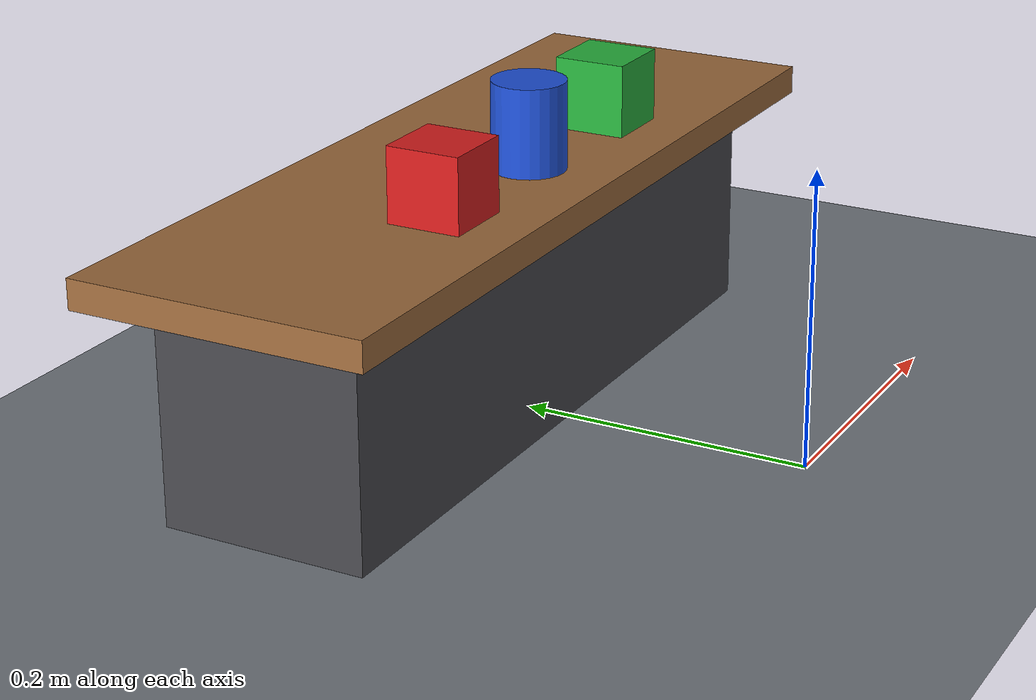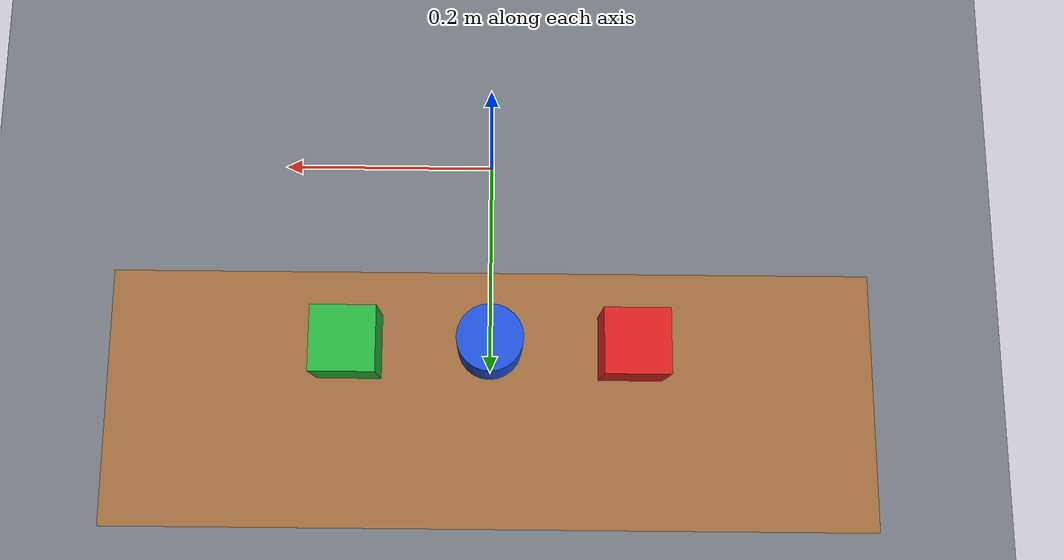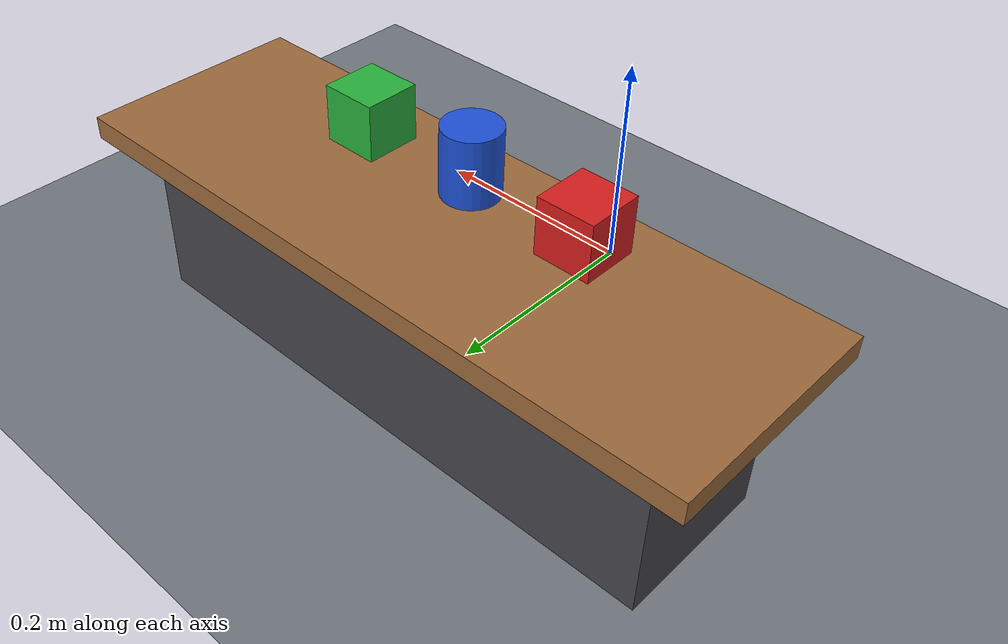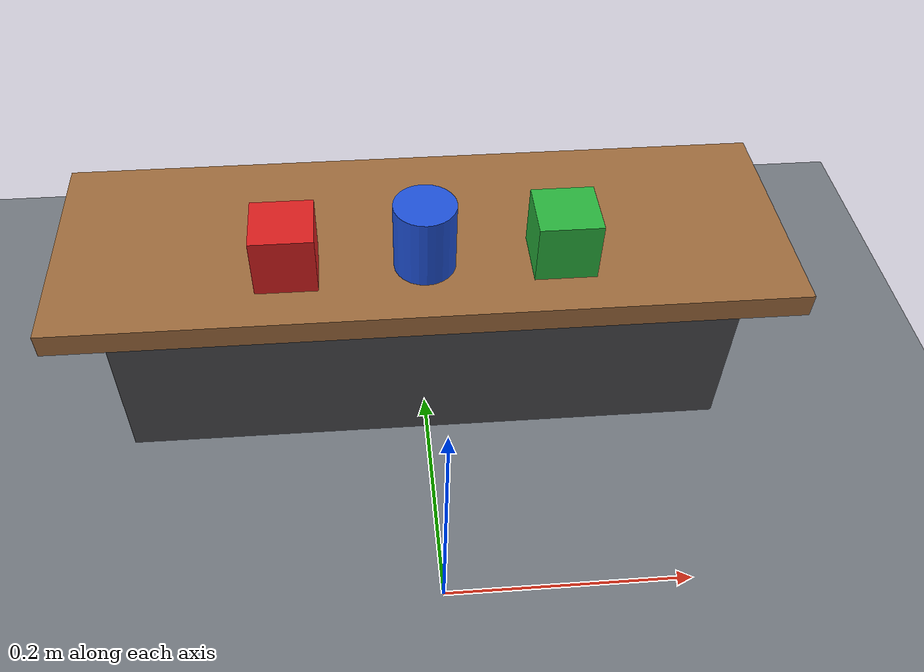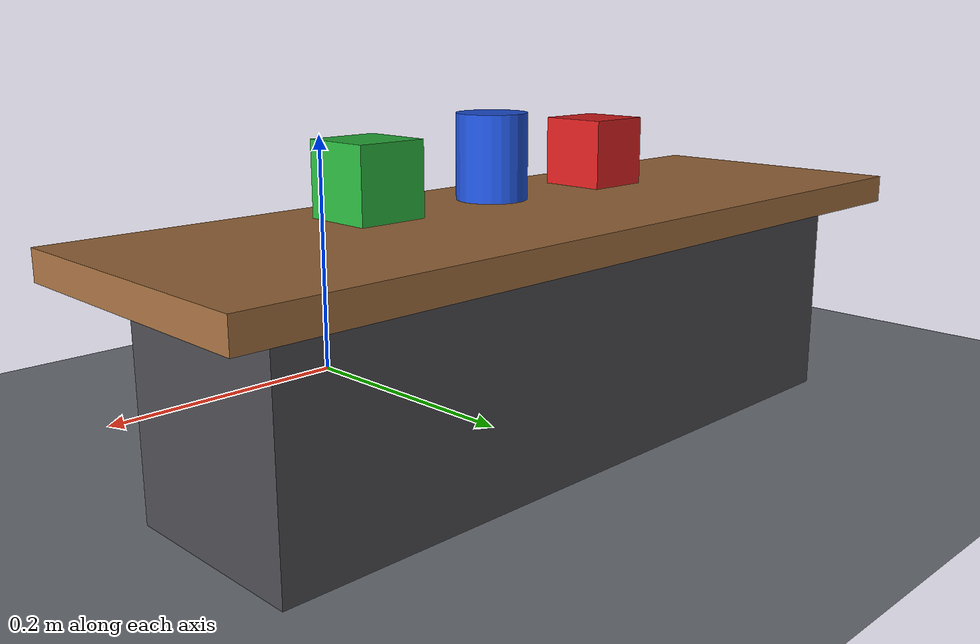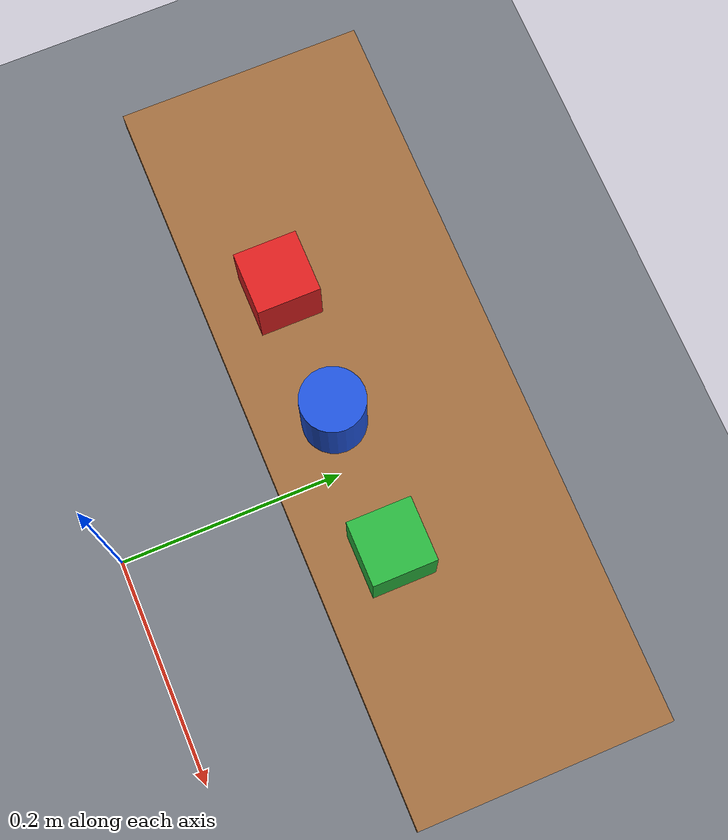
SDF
<?xml version="1.0" ?>
<sdf version="1.9">
  <world name="laboratorio">

    <physics name="paso_1ms" type="ignored">
      <max_step_size>0.001</max_step_size>
      <real_time_factor>1.0</real_time_factor>
      <real_time_update_rate>1000</real_time_update_rate>
    </physics>

    <gravity>0 0 -9.81</gravity>

    <plugin filename="gz-sim-physics-system"
            name="gz::sim::systems::Physics"/>
    <plugin filename="gz-sim-user-commands-system"
            name="gz::sim::systems::UserCommands"/>
    <plugin filename="gz-sim-scene-broadcaster-system"
            name="gz::sim::systems::SceneBroadcaster"/>
    <plugin filename="gz-sim-contact-system"
            name="gz::sim::systems::Contact"/>

    <!-- ================================================================
         ESCENA E ILUMINACION
         ================================================================ -->
    <scene>
      <ambient>0.6 0.6 0.6 1</ambient>
      <background>0.75 0.80 0.86 1</background>
      <shadows>true</shadows>
    </scene>

    <light type="directional" name="sol">
      <cast_shadows>true</cast_shadows>
      <pose>0 0 6 0 0 0</pose>
      <diffuse>0.9 0.9 0.9 1</diffuse>
      <specular>0.25 0.25 0.25 1</specular>
      <direction>-0.4 0.3 -0.9</direction>
      <attenuation>
        <range>25</range>
        <constant>0.9</constant>
        <linear>0.01</linear>
        <quadratic>0.001</quadratic>
      </attenuation>
    </light>

    <model name="suelo">
      <static>true</static>
      <link name="link">
        <collision name="collision">
          <geometry>
            <plane>
              <normal>0 0 1</normal>
              <size>20 20</size>
            </plane>
          </geometry>
          <surface>
            <friction>
              <ode>
                <mu>0.9</mu>
                <mu2>0.9</mu2>
              </ode>
            </friction>
          </surface>
        </collision>
        <visual name="visual">
          <geometry>
            <plane>
              <normal>0 0 1</normal>
              <size>20 20</size>
            </plane>
          </geometry>
          <material>
            <ambient>0.35 0.37 0.40 1</ambient>
            <diffuse>0.45 0.47 0.50 1</diffuse>
            <specular>0.1 0.1 0.1 1</specular>
          </material>
        </visual>
      </link>
    </model>

    <model name="mesa_trabajo">
      <static>true</static>
      <pose>0.0 0.24 0.0 0 0 0</pose>
      <link name="tablero">
        <pose>0 0 0.16 0 0 0</pose>
        <collision name="collision">
          <geometry>
            <box><size>0.60 0.20 0.02</size></box>
          </geometry>
        </collision>
        <visual name="visual">
          <geometry>
            <box><size>0.60 0.20 0.02</size></box>
          </geometry>
          <material>
            <ambient>0.45 0.30 0.18 1</ambient>
            <diffuse>0.62 0.42 0.24 1</diffuse>
          </material>
        </visual>
      </link>
      <link name="patas">
        <pose>0 0 0.075 0 0 0</pose>
        <collision name="collision">
          <geometry>
            <box><size>0.52 0.14 0.15</size></box>
          </geometry>
        </collision>
        <visual name="visual">
          <geometry>
            <box><size>0.52 0.14 0.15</size></box>
          </geometry>
          <material>
            <ambient>0.20 0.20 0.22 1</ambient>
            <diffuse>0.28 0.28 0.30 1</diffuse>
          </material>
        </visual>
      </link>
    </model>

    <model name="cubo_rojo">
      <pose>-0.11 0.20 0.195 0 0 0</pose>
      <link name="link">
        <inertial>
          <mass>0.08</mass>
          <!-- Cubo homogeneo de 0.05 m: I = m*a^2/6 -->
          <inertia>
            <ixx>0.0000333</ixx><iyy>0.0000333</iyy><izz>0.0000333</izz>
            <ixy>0</ixy><ixz>0</ixz><iyz>0</iyz>
          </inertia>
        </inertial>
        <collision name="collision">
          <geometry><box><size>0.05 0.05 0.05</size></box></geometry>
        </collision>
        <visual name="visual">
          <geometry><box><size>0.05 0.05 0.05</size></box></geometry>
          <material>
            <ambient>0.55 0.08 0.08 1</ambient>
            <diffuse>0.85 0.12 0.12 1</diffuse>
          </material>
        </visual>
      </link>
    </model>

    <model name="cilindro_azul">
      <pose>0.0 0.20 0.200 0 0 0</pose>
      <link name="link">
        <inertial>
          <mass>0.06</mass>
          <!-- Cilindro r=0.025 h=0.06: Ixx=Iyy=m(3r^2+h^2)/12, Izz=m*r^2/2 -->
          <inertia>
            <ixx>0.0000281</ixx><iyy>0.0000281</iyy><izz>0.0000188</izz>
            <ixy>0</ixy><ixz>0</ixz><iyz>0</iyz>
          </inertia>
        </inertial>
        <collision name="collision">
          <geometry><cylinder><radius>0.025</radius><length>0.06</length></cylinder></geometry>
        </collision>
        <visual name="visual">
          <geometry><cylinder><radius>0.025</radius><length>0.06</length></cylinder></geometry>
          <material>
            <ambient>0.08 0.20 0.55 1</ambient>
            <diffuse>0.12 0.32 0.85 1</diffuse>
          </material>
        </visual>
      </link>
    </model>

    <model name="cubo_verde">
      <pose>0.11 0.20 0.195 0 0 0</pose>
      <link name="link">
        <inertial>
          <mass>0.08</mass>
          <inertia>
            <ixx>0.0000333</ixx><iyy>0.0000333</iyy><izz>0.0000333</izz>
            <ixy>0</ixy><ixz>0</ixz><iyz>0</iyz>
          </inertia>
        </inertial>
        <collision name="collision">
          <geometry><box><size>0.05 0.05 0.05</size></box></geometry>
        </collision>
        <visual name="visual">
          <geometry><box><size>0.05 0.05 0.05</size></box></geometry>
          <material>
            <ambient>0.10 0.45 0.15 1</ambient>
            <diffuse>0.16 0.70 0.24 1</diffuse>
          </material>
        </visual>
      </link>
    </model>

  </world>
</sdf>
